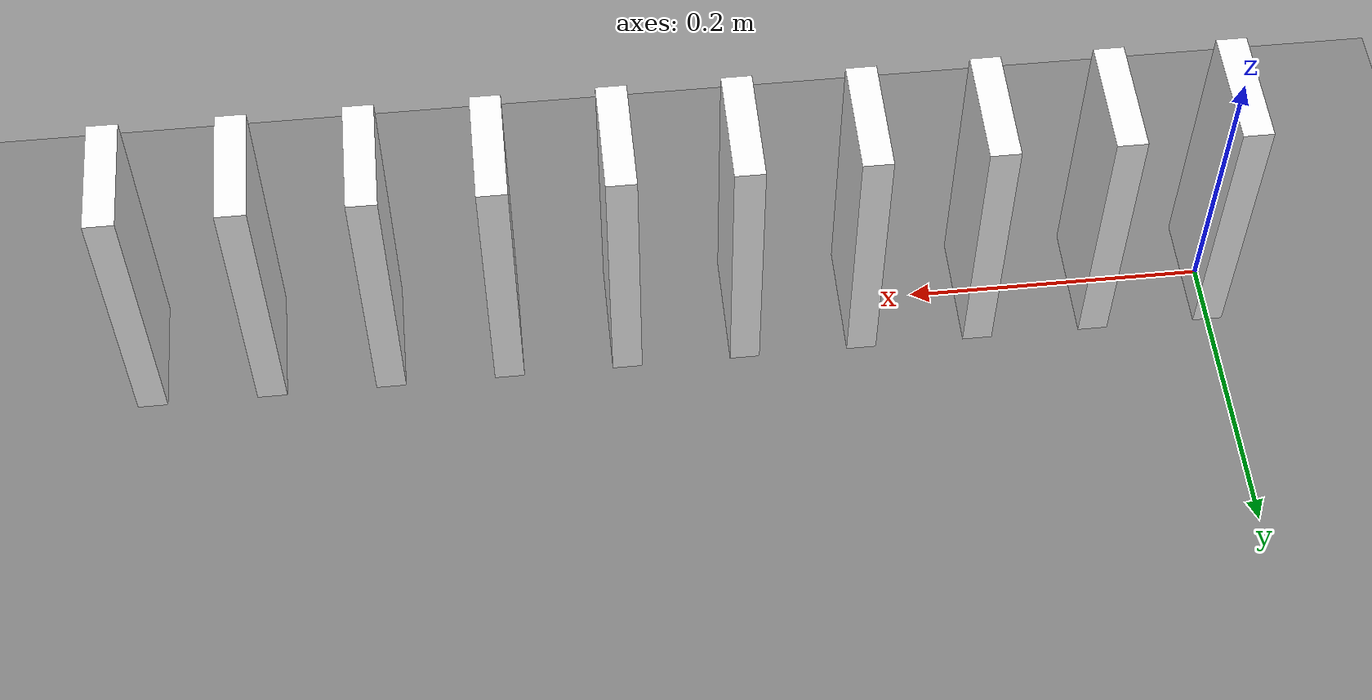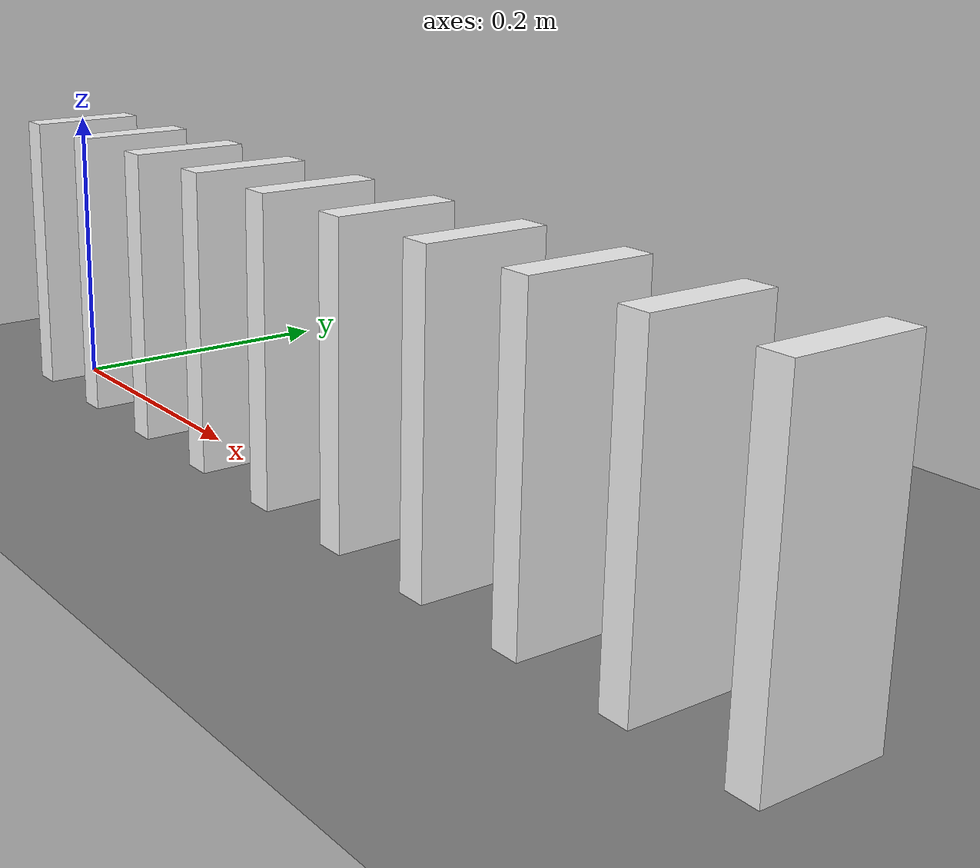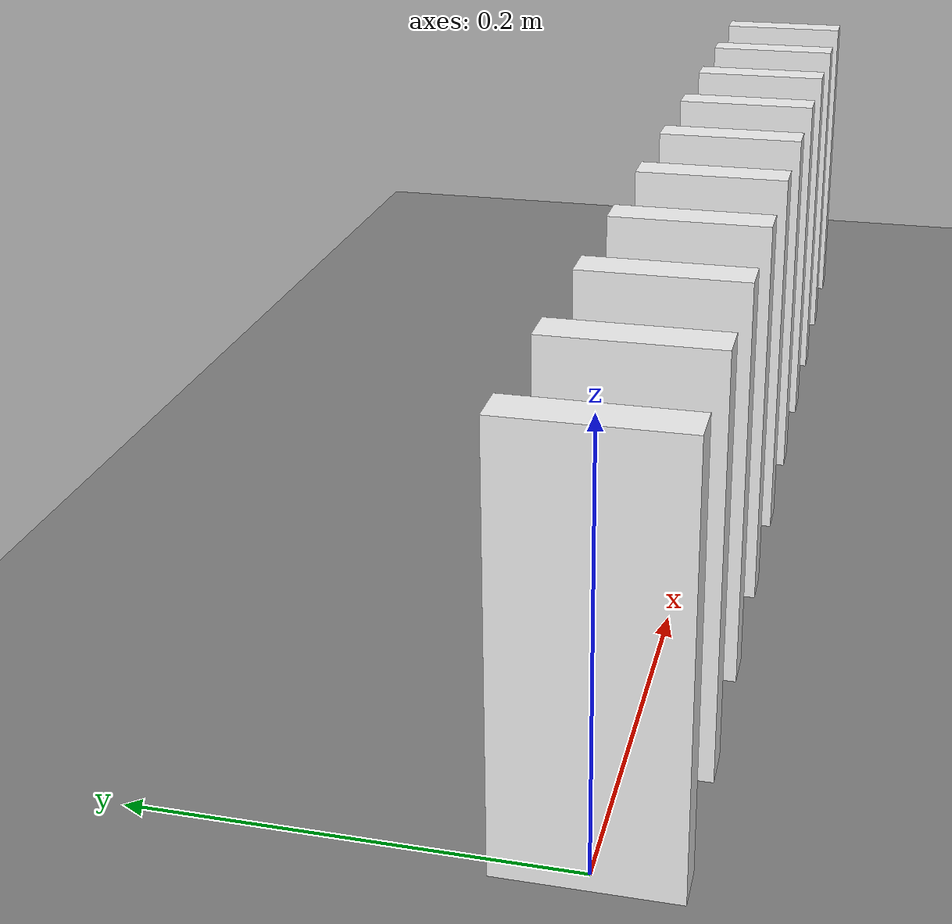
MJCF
<mujoco model="ten_dominoes_falling_in_a_row">
  <compiler angle="radian"/>
  <option timestep="0.002"/>
  <worldbody>
    <geom name="floor" type="plane" size="3 3 0.1" friction="0.8 0.001 0.0001"/>
    <body name="domino1" pos="0 0 0.1">
      <freejoint/>
      <geom name="domino1" type="box" pos="0 0 0" size="0.01 0.04 0.1" mass="0.2" friction="0.8 0.001 0.0001" solref="0.01 1" rgba="0.95 0.95 0.95 1"/>
    </body>
    <body name="domino2" pos="0.08 0 0.1">
      <freejoint/>
      <geom name="domino2" type="box" pos="0 0 0" size="0.01 0.04 0.1" mass="0.2" friction="0.8 0.001 0.0001" solref="0.01 1" rgba="0.95 0.95 0.95 1"/>
    </body>
    <body name="domino3" pos="0.16 0 0.1">
      <freejoint/>
      <geom name="domino3" type="box" pos="0 0 0" size="0.01 0.04 0.1" mass="0.2" friction="0.8 0.001 0.0001" solref="0.01 1" rgba="0.95 0.95 0.95 1"/>
    </body>
    <body name="domino4" pos="0.24 0 0.1">
      <freejoint/>
      <geom name="domino4" type="box" pos="0 0 0" size="0.01 0.04 0.1" mass="0.2" friction="0.8 0.001 0.0001" solref="0.01 1" rgba="0.95 0.95 0.95 1"/>
    </body>
    <body name="domino5" pos="0.32 0 0.1">
      <freejoint/>
      <geom name="domino5" type="box" pos="0 0 0" size="0.01 0.04 0.1" mass="0.2" friction="0.8 0.001 0.0001" solref="0.01 1" rgba="0.95 0.95 0.95 1"/>
    </body>
    <body name="domino6" pos="0.4 0 0.1">
      <freejoint/>
      <geom name="domino6" type="box" pos="0 0 0" size="0.01 0.04 0.1" mass="0.2" friction="0.8 0.001 0.0001" solref="0.01 1" rgba="0.95 0.95 0.95 1"/>
    </body>
    <body name="domino7" pos="0.48 0 0.1">
      <freejoint/>
      <geom name="domino7" type="box" pos="0 0 0" size="0.01 0.04 0.1" mass="0.2" friction="0.8 0.001 0.0001" solref="0.01 1" rgba="0.95 0.95 0.95 1"/>
    </body>
    <body name="domino8" pos="0.56 0 0.1">
      <freejoint/>
      <geom name="domino8" type="box" pos="0 0 0" size="0.01 0.04 0.1" mass="0.2" friction="0.8 0.001 0.0001" solref="0.01 1" rgba="0.95 0.95 0.95 1"/>
    </body>
    <body name="domino9" pos="0.64 0 0.1">
      <freejoint/>
      <geom name="domino9" type="box" pos="0 0 0" size="0.01 0.04 0.1" mass="0.2" friction="0.8 0.001 0.0001" solref="0.01 1" rgba="0.95 0.95 0.95 1"/>
    </body>
    <body name="domino10" pos="0.72 0 0.1">
      <freejoint/>
      <geom name="domino10" type="box" pos="0 0 0" size="0.01 0.04 0.1" mass="0.2" friction="0.8 0.001 0.0001" solref="0.01 1" rgba="0.95 0.95 0.95 1"/>
    </body>
  </worldbody>
  <keyframe>
    <key name="start" qpos="0 0 0.1 1 0 0 0 0.08 0 0.1 1 0 0 0 0.16 0 0.1 1 0 0 0 0.24 0 0.1 1 0 0 0 0.32 0 0.1 1 0 0 0 0.4 0 0.1 1 0 0 0 0.48 0 0.1 1 0 0 0 0.56 0 0.1 1 0 0 0 0.64 0 0.1 1 0 0 0 0.72 0 0.1 1 0 0 0" qvel="0 0 0 0 8 0 0 0 0 0 0 0 0 0 0 0 0 0 0 0 0 0 0 0 0 0 0 0 0 0 0 0 0 0 0 0 0 0 0 0 0 0 0 0 0 0 0 0 0 0 0 0 0 0 0 0 0 0 0 0"/>
  </keyframe>
</mujoco>
